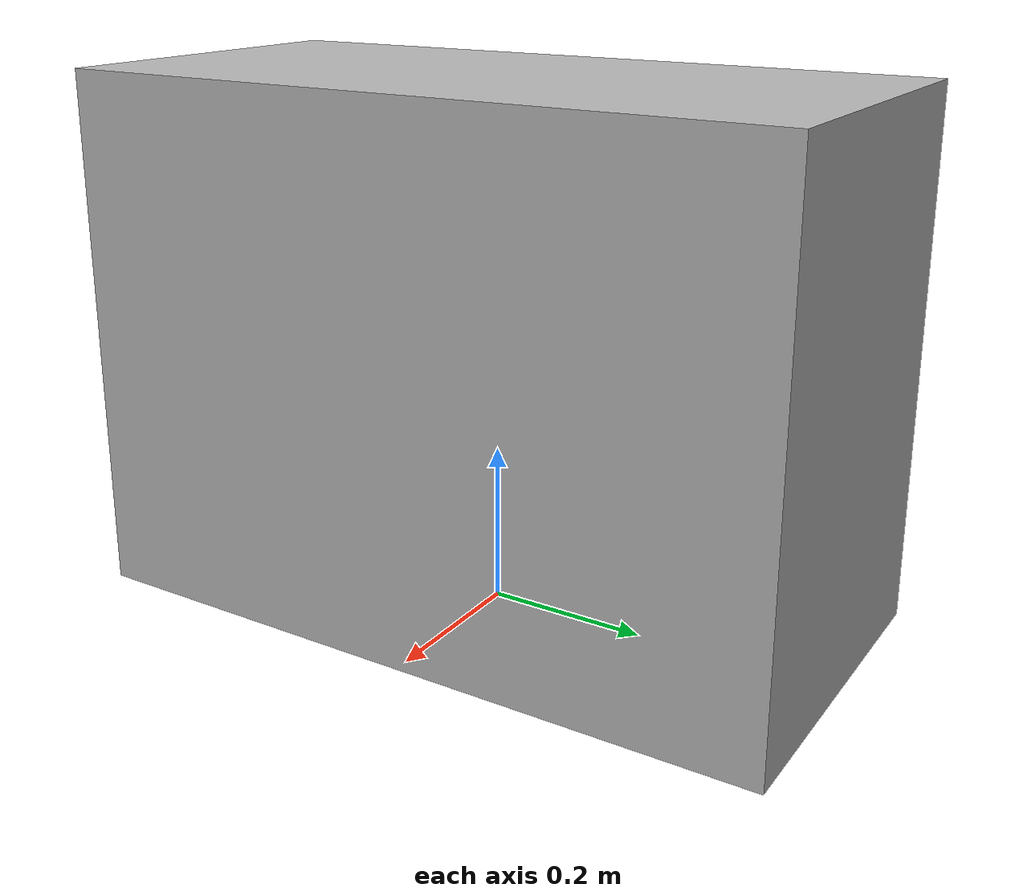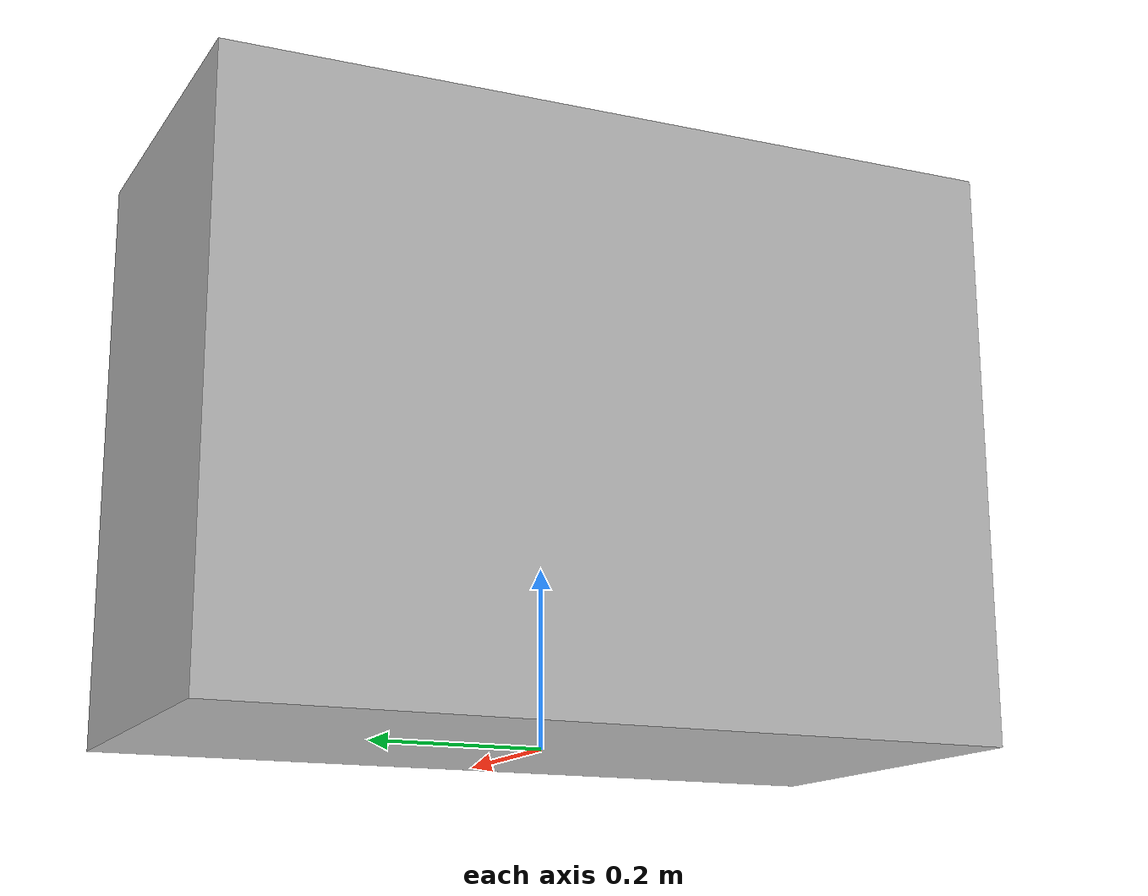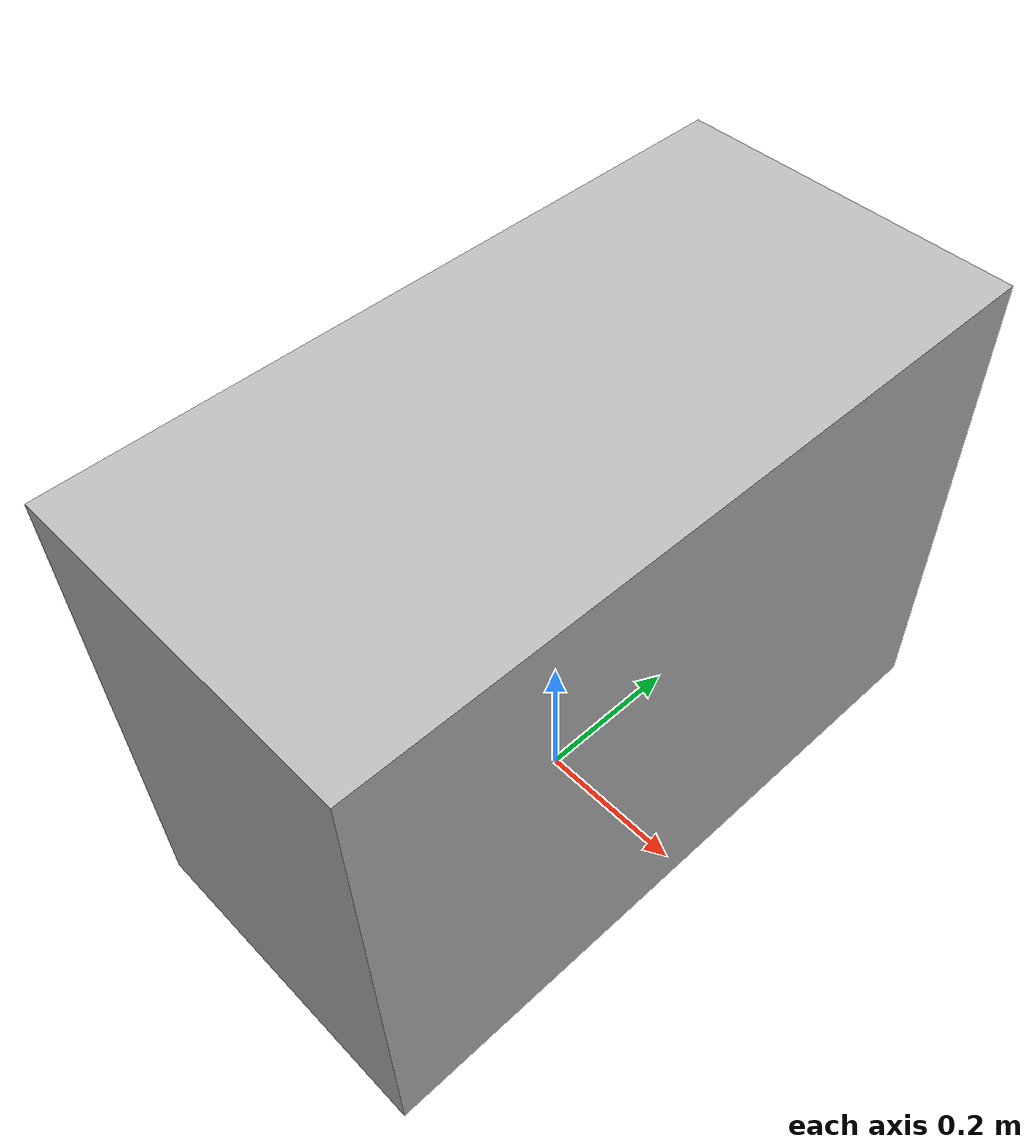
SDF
<?xml version="1.0" ?>
<sdf version="1.6">
  <model name="rwc2023/bedroom_small_furniture">
    <static>true</static>
    <link name="1_link">
      <collision name="1_col">
        <geometry>
          <box>
            <size>0.44 0.9 0.66</size>
          </box>
        </geometry>
      </collision>
      <visual name="1_vis">
        <geometry>
          <box>
            <size>0.44 0.9 0.66</size>
          </box>
        </geometry>
      </visual>
      <pose>0.0 0.0 0.33 0 0 0</pose>
    </link>
    <link name="on_top_of">
      <virtual_volume name="on_top_of_vv">
        <geometry>
          <box>
            <size>0.42 0.84 0.25</size>
          </box>
        </geometry>
        <pose>0.0 0.0 0.805 0 0 0</pose>
      </virtual_volume>
    </link>
    <link name="in_front_of">
      <virtual_volume name="in_front_of_vv">
        <geometry>
          <box>
            <size>0.2 0.7 0.01</size>
          </box>
        </geometry>
        <pose>0.72 0.0 0.005 0 0 0</pose>
      </virtual_volume>
    </link>
  </model>
</sdf>
